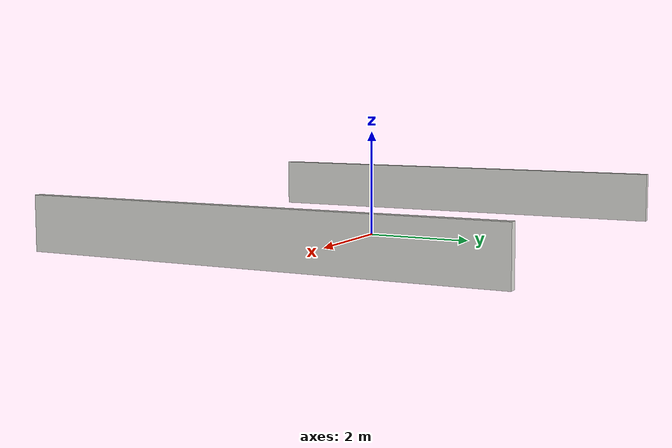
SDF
<?xml version='1.0'?>
<sdf version='1.6'>
  <model name='room_5x5_channel'>
    <static>1</static>
    <pose frame=''>0 0 0 0 -0 0</pose>
    <link name='Wall_1'>
      <collision name='Wall_1_Collision'>
        <geometry>
          <box>
            <size>8.75 0.15 1.0</size>
          </box>
        </geometry>
        <pose frame=''>0 0 0.5 0 -0 0</pose>
      </collision>
      <visual name='Wall_1_Visual'>
        <pose frame=''>0 0 0.5 0 -0 0</pose>
        <geometry>
          <box>
            <size>8.75 0.15 1.0</size>
          </box>
        </geometry>
        <material>
          <script>
            <uri>file://media/materials/scripts/gazebo.material</uri>
            <name>Gazebo/CeilingTiled</name>
          </script>
          <ambient>1 0.764706 0.305882 1</ambient>
        </material>
      </visual>
      <pose frame=''>4.4489 -0.000387 0 0 0 -1.5708</pose>
    </link>
    <link name='Wall_2'>
      <collision name='Wall_2_Collision'>
        <geometry>
          <box>
            <size>8.75 0.15 1.0</size>
          </box>
        </geometry>
        <pose frame=''>0 0 0.5 0 -0 0</pose>
      </collision>
      <visual name='Wall_2_Visual'>
        <pose frame=''>0 0 0.5 0 -0 0</pose>
        <geometry>
          <box>
            <size>8.75 0.15 1.0</size>
          </box>
        </geometry>
        <material>
          <script>
            <uri>file://media/materials/scripts/gazebo.material</uri>
            <name>Gazebo/CeilingTiled</name>
          </script>
          <ambient>1 0.764706 0.305882 1</ambient>
        </material>
      </visual>
      <pose frame=''>-4.44913 0.000846 0 0 0 -1.5708</pose>
    </link>
  </model>
</sdf>
